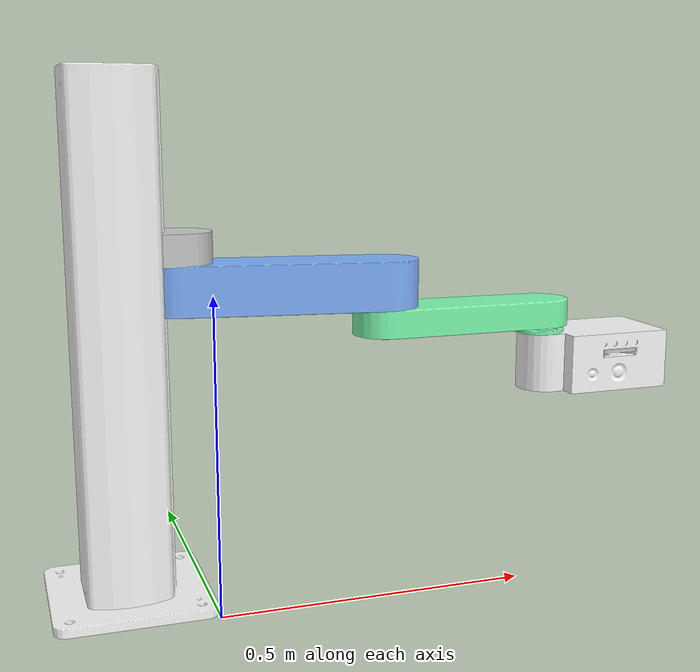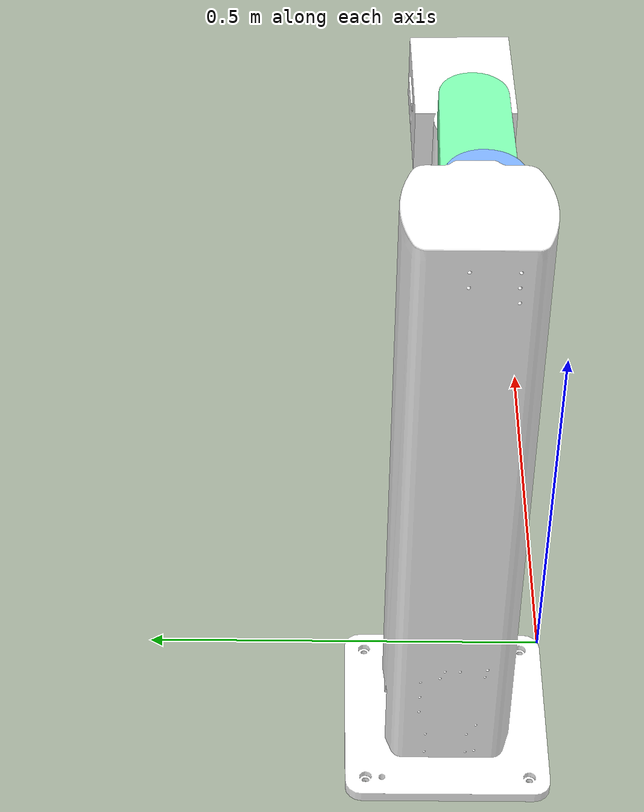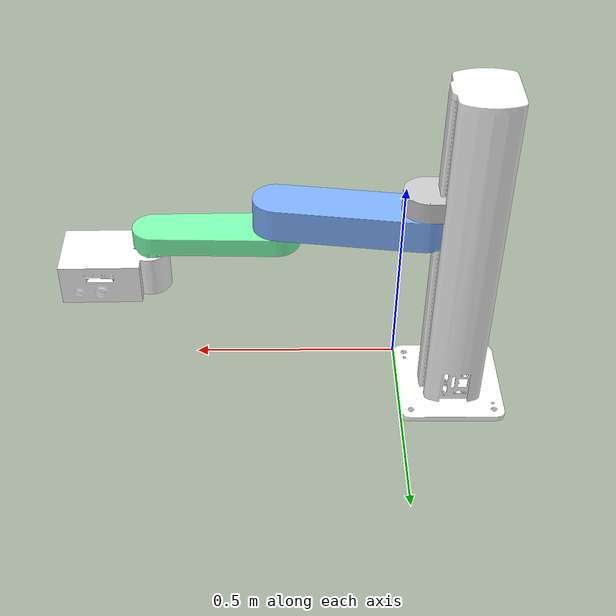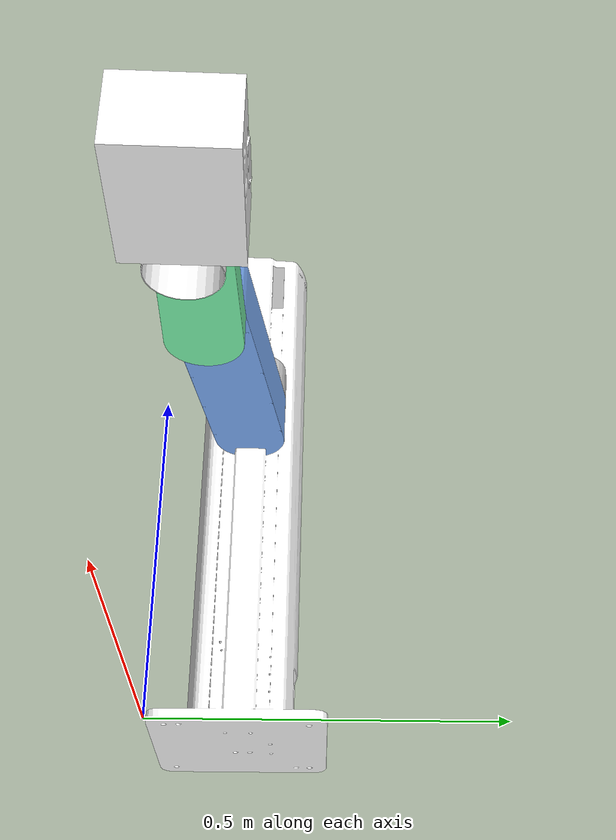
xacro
<?xml version="1.0"?>
<robot xmlns:xacro="http://www.ros.org/wiki/xacro" name="ur3">
    <xacro:arg name="initial_positions_file" default="initial_positions.yaml" />

    <!-- Import ur3 urdf file -->
    <xacro:include filename="$(find my_robot_description)/urdf/ur3.urdf.xacro" />

    <!-- Import control_xacro -->
    <xacro:include filename="ur3.ros2_control.xacro" />

    <xacro:ur3_ros2_control name="FakeSystem" initial_positions_file="$(arg initial_positions_file)"/>

</robot>

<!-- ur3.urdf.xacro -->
<!-- 声明 xacro 命名空间（xacro 格式必需） -->
<robot name="ur3" xmlns:xacro="http://www.ros.org/wiki/xacro">

    <!-- 底座连杆 base_link - 单独配置颜色（白色） -->
    <link name="base_link">
        <inertial>
            <origin xyz="-0.13943 -0.12437 -0.34278" rpy="0 0 0" />
            <mass value="4.5671" />
            <inertia ixx="0.20051" ixy="-8.0396E-05" ixz="0.00036454" iyy="0.19652" iyz="-0.0014165"
                izz="0.026986" />
        </inertial>
        <visual>
            <origin xyz="0 0 0" rpy="1.5708 0 0" />
            <geometry>
                <mesh filename="package://my_robot_description/meshes/base_link.STL" />
            </geometry>
            <!-- 单独写颜色：白色（rgba=1 1 1 1） -->
            <material name="base_link_white">
                <color rgba="1 1 1 1" />
            </material>
        </visual>
        <collision>
            <origin xyz="-0.125 0.125 0.425" rpy="0 0 0" />
            <geometry>
                <box size="0.145 0.145 0.83" />
            </geometry>
        </collision>
        <collision>
            <origin xyz="-0.125 0.125 0.005" rpy="0 0 0" />
            <geometry>
                <box size="0.25 0.25 0.01" />
            </geometry>
        </collision>
    </link>
    <!-- 连杆 link1 - 单独配置颜色（浅灰色） -->
    <link name="link1">
        <inertial>
            <origin xyz="0.028429 -0.10525 -0.058001" rpy="0 0 0" />
            <mass value="1.0689" />
            <inertia ixx="0.0042774" ixy="0.00017477" ixz="-1.5776E-08" iyy="0.0011483"
                iyz="-2.8503E-08" izz="0.0037421" />
        </inertial>
        <visual>
            <origin xyz="0 0 0" rpy="0 0 0" />
            <geometry>
                <mesh filename="package://my_robot_description/meshes/link1.STL" />
            </geometry>
            <!-- 单独写颜色：浅灰色（rgba=0.8 0.8 0.8 1） -->
            <material name="link1_light_grey">
                <color rgba="0.8 0.8 0.8 1" />
            </material>
        </visual>
        <collision>
            <origin xyz="0.02575 -0.1005 -0.058" rpy="1.5708 0 1.5708" />
            <geometry>
                <box size="0.201 0.116 0.0515" />
            </geometry>
        </collision>
    </link>
    <!-- 连杆 link2 - 单独配置颜色（浅蓝色） -->
    <link name="link2">
        <inertial>
            <origin xyz="0.14475 -3.0463E-07 0.041307" rpy="0 0 0" />
            <mass value="2.5831" />
            <inertia ixx="0.0036792" ixy="4.4029E-08" ixz="6.8027E-05" iyy="0.026394"
                iyz="-3.6629E-08" izz="0.027895" />
        </inertial>
        <visual>
            <origin xyz="0 0 0" rpy="0 0 0" />
            <geometry>
                <mesh filename="package://my_robot_description/meshes/link2.STL" />
            </geometry>
            <!-- 单独写颜色：浅蓝色（rgba=0.5 0.7 1 1） -->
            <material name="link2_light_blue">
                <color rgba="0.5 0.7 1 1" />
            </material>
        </visual>
        <collision>
            <origin xyz="0.18 0 0.03925" rpy="0 0 0" />
            <geometry>
                <box size="0.431 0.106 0.07" />
            </geometry>
        </collision>
    </link>

    <!-- 连杆 link3 - 单独配置颜色（浅绿色） -->
    <link name="link3">
        <inertial>
            <origin xyz="-0.1088 -0.002117 0.025856" rpy="0 0 0" />
            <mass value="1.2392" />
            <inertia ixx="0.0012197" ixy="-0.00016376" ixz="0.00020961" iyy="0.0094966"
                iyz="5.3385E-06" izz="0.010415" />
        </inertial>
        <visual>
            <origin xyz="0 0 0" rpy="0 0 0" />
            <geometry>
                <mesh filename="package://my_robot_description/meshes/link3.STL" />
            </geometry>
            <!-- 单独写颜色：浅绿色（rgba=0.5 1 0.7 1） -->
            <material name="link3_light_green">
                <color rgba="0.5 1 0.7 1" />
            </material>
        </visual>
        <collision>
            <origin xyz="-0.145 0 0.0225" rpy="0 0 0" />
            <geometry>
                <box size="0.375 0.105 0.045" />
            </geometry>
        </collision>
    </link>
    <link name="tool_link"/>

    <link
        name="gripper">
        <inertial>
            <origin
                xyz="-0.00983151017542139 0.0599333115427437 -0.00175977245523265"
                rpy="0 0 0" />
            <mass
                value="0.77675171638187" />
            <inertia
                ixx="0.00185381068085517"
                ixy="-7.86059690722816E-05"
                ixz="-1.82743897733095E-06"
                iyy="0.00404204258926908"
                iyz="-2.78591740390197E-07"
                izz="0.00280516037345738" />
        </inertial>
        <visual>
            <origin
                xyz="0.121 -0.1 0"
                rpy="0 0 0" />
            <geometry>
                <mesh
                    filename="package://my_robot_description/meshes/gripper.STL" />
            </geometry>
            <material
                name="">
                <color
                    rgba="1 1 1 1" />
            </material>
        </visual>
        <collision>
            <origin
                xyz="0.091 -0.04875 0"
                rpy="0 0 0" />
            <geometry>
                <box size="0.242 0.0975 0.140" />
            </geometry>
        </collision>
    </link>

    <!-- 移动关节 joint1（棱柱关节） -->
    <joint name="joint1" type="prismatic">
        <origin xyz="-0.18 0.183 0.5841" rpy="3.1416 1.5708 -1.5708" />
        <parent link="base_link" />
        <child link="link1" />
        <axis xyz="1 0 0" />
        <limit lower="-0.8" upper="0.8" effort="100" velocity="1" />
    </joint>
    <!-- 旋转关节 joint2（绕 z 轴负方向） -->
    <joint name="joint2" type="revolute">
        <origin xyz="0.048996 -0.153 -0.058" rpy="-1.5708 0.13714 -1.5708" />
        <parent link="link1" />
        <child link="link2" />
        <axis xyz="0 0 -1" />
        <limit lower="-3.14" upper="3.14" effort="100" velocity="1" />
    </joint>
    <!-- 旋转关节 joint3（绕 z 轴负方向） -->
    <joint name="joint3" type="revolute">
        <origin xyz="0.325 0 0.077501" rpy="0 0 2.9888" />
        <parent link="link2" />
        <child link="link3" />
        <axis xyz="0 0 -1" />
        <limit lower="-3.14" upper="3.14" effort="100" velocity="1" />
    </joint>
    <joint name="joint3_tool" type="fixed">
        <parent link="link3" />
        <child link="tool_link" />
        <origin xyz="0.0 0.0 0.0" rpy="0.0 0.0 0.0"/>
    </joint>

    <joint name="joint_tool_gripper" type="revolute">
        <origin xyz="-0.275 0.0 0.055" rpy="-1.5708 0.0 3.1416" />
        <parent link="tool_link" />
        <child link="gripper" />
        <axis xyz="0 1 0" />
       <limit lower="-3.14" upper="3.14" effort="100" velocity="1" />
    </joint>

</robot>
